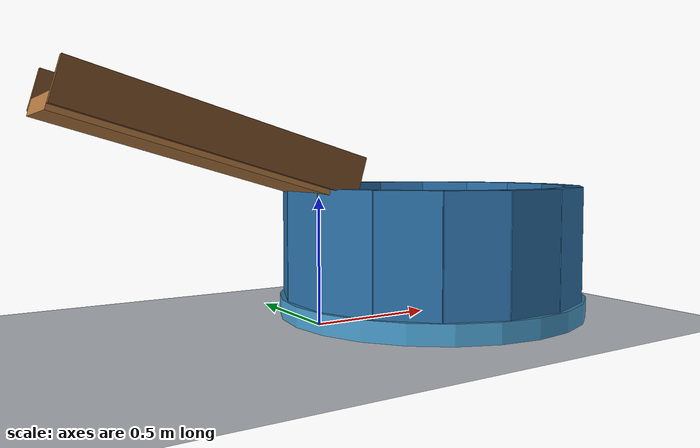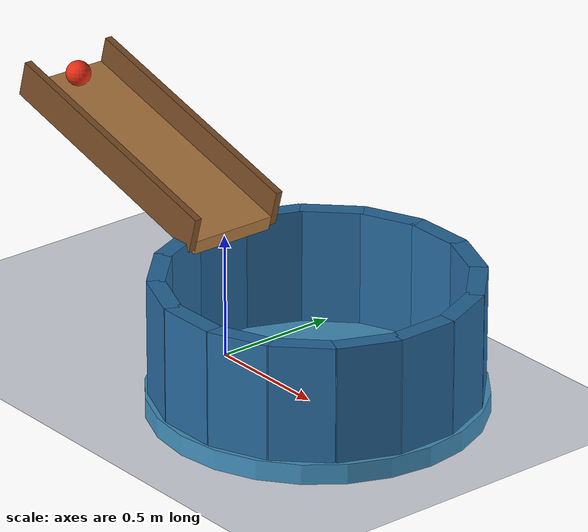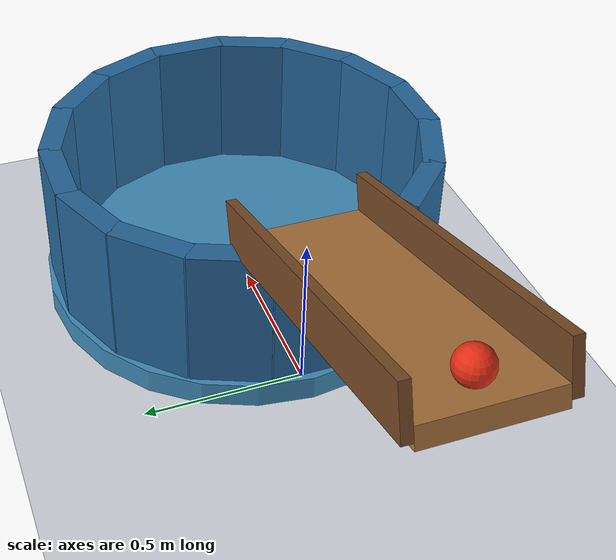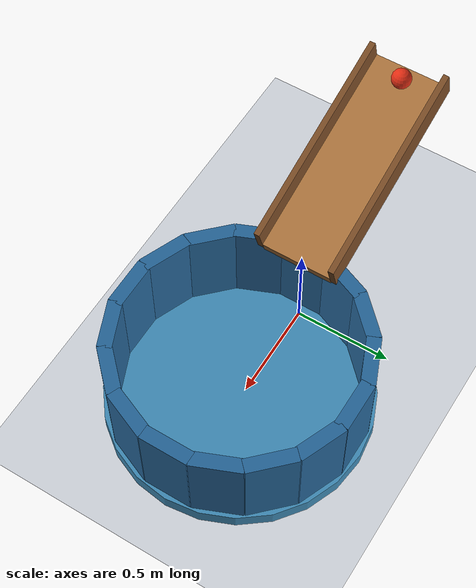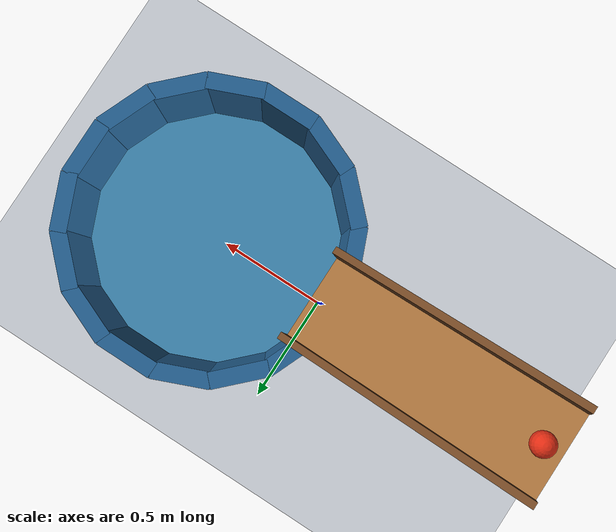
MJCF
<mujoco model="ball_rolls_into_cup">
  <compiler angle="degree"/>
  <option timestep="0.002" gravity="0 0 -9.81" integrator="implicitfast" cone="elliptic" iterations="100"/>
  <size njmax="500" nconmax="200"/>

  <visual>
    <global azimuth="125" elevation="-25"/>
    <headlight ambient="0.35 0.35 0.35" diffuse="0.65 0.65 0.65" specular="0.2 0.2 0.2"/>
  </visual>

  <worldbody>
    <light name="overhead" pos="-0.5 -1.5 3" dir="0.2 0.3 -1" diffuse="0.8 0.8 0.8"/>
    <camera name="overview" pos="0.1 -3.4 2.3" xyaxes="1 0 0 0 0.5 0.866025" fovy="45"/>

    <geom name="floor" type="plane" pos="0 0 0" size="4 4 0.1" rgba="0.83 0.85 0.88 1" friction="0.8 0.01 0.01" condim="6"/>

    <!-- The ramp descends toward +x and ends just inside the cup opening. -->
    <body name="ramp" pos="-0.475 0 0.67" euler="0 15.9454 0">
      <geom name="ramp_surface" type="box" size="0.546008 0.18 0.03" rgba="0.68 0.46 0.24 1" friction="0.8 0.005 0.0005" condim="6" solref="0.01 1" solimp="0.95 0.99 0.001"/>
      <geom name="ramp_rail_left" type="box" pos="0 0.195 0.065" size="0.546008 0.015 0.075" rgba="0.48 0.30 0.15 1" friction="0.8 0.005 0.0005" condim="6" solref="0.01 1" solimp="0.95 0.99 0.001"/>
      <geom name="ramp_rail_right" type="box" pos="0 -0.195 0.065" size="0.546008 0.015 0.075" rgba="0.48 0.30 0.15 1" friction="0.8 0.005 0.0005" condim="6" solref="0.01 1" solimp="0.95 0.99 0.001"/>
    </body>

    <!-- Overlapping wall segments form an open cup with a solid bottom.
         Its larger rolling friction dissipates the ball's remaining motion. -->
    <body name="cup" pos="0.55 0 0">
      <geom name="cup_bottom" type="cylinder" pos="0 0 0.04" size="0.65 0.04" rgba="0.25 0.55 0.72 1" friction="1 0.02 0.035" condim="6" solref="0.01 1" solimp="0.95 0.99 0.001"/>
      <geom name="cup_wall_00" type="box" pos="0.59 0 0.30" euler="0 0 0" size="0.035 0.122 0.24" rgba="0.15 0.40 0.60 1" friction="1 0.02 0.035" condim="6" solref="0.01 1" solimp="0.95 0.99 0.001"/>
      <geom name="cup_wall_01" type="box" pos="0.545489 0.225783 0.30" euler="0 0 22.5" size="0.035 0.122 0.24" rgba="0.15 0.40 0.60 1" friction="1 0.02 0.035" condim="6" solref="0.01 1" solimp="0.95 0.99 0.001"/>
      <geom name="cup_wall_02" type="box" pos="0.417193 0.417193 0.30" euler="0 0 45" size="0.035 0.122 0.24" rgba="0.15 0.40 0.60 1" friction="1 0.02 0.035" condim="6" solref="0.01 1" solimp="0.95 0.99 0.001"/>
      <geom name="cup_wall_03" type="box" pos="0.225783 0.545489 0.30" euler="0 0 67.5" size="0.035 0.122 0.24" rgba="0.15 0.40 0.60 1" friction="1 0.02 0.035" condim="6" solref="0.01 1" solimp="0.95 0.99 0.001"/>
      <geom name="cup_wall_04" type="box" pos="0 0.59 0.30" euler="0 0 90" size="0.035 0.122 0.24" rgba="0.15 0.40 0.60 1" friction="1 0.02 0.035" condim="6" solref="0.01 1" solimp="0.95 0.99 0.001"/>
      <geom name="cup_wall_05" type="box" pos="-0.225783 0.545489 0.30" euler="0 0 112.5" size="0.035 0.122 0.24" rgba="0.15 0.40 0.60 1" friction="1 0.02 0.035" condim="6" solref="0.01 1" solimp="0.95 0.99 0.001"/>
      <geom name="cup_wall_06" type="box" pos="-0.417193 0.417193 0.30" euler="0 0 135" size="0.035 0.122 0.24" rgba="0.15 0.40 0.60 1" friction="1 0.02 0.035" condim="6" solref="0.01 1" solimp="0.95 0.99 0.001"/>
      <geom name="cup_wall_07" type="box" pos="-0.545489 0.225783 0.30" euler="0 0 157.5" size="0.035 0.122 0.24" rgba="0.15 0.40 0.60 1" friction="1 0.02 0.035" condim="6" solref="0.01 1" solimp="0.95 0.99 0.001"/>
      <geom name="cup_wall_08" type="box" pos="-0.59 0 0.30" euler="0 0 180" size="0.035 0.122 0.24" rgba="0.15 0.40 0.60 1" friction="1 0.02 0.035" condim="6" solref="0.01 1" solimp="0.95 0.99 0.001"/>
      <geom name="cup_wall_09" type="box" pos="-0.545489 -0.225783 0.30" euler="0 0 202.5" size="0.035 0.122 0.24" rgba="0.15 0.40 0.60 1" friction="1 0.02 0.035" condim="6" solref="0.01 1" solimp="0.95 0.99 0.001"/>
      <geom name="cup_wall_10" type="box" pos="-0.417193 -0.417193 0.30" euler="0 0 225" size="0.035 0.122 0.24" rgba="0.15 0.40 0.60 1" friction="1 0.02 0.035" condim="6" solref="0.01 1" solimp="0.95 0.99 0.001"/>
      <geom name="cup_wall_11" type="box" pos="-0.225783 -0.545489 0.30" euler="0 0 247.5" size="0.035 0.122 0.24" rgba="0.15 0.40 0.60 1" friction="1 0.02 0.035" condim="6" solref="0.01 1" solimp="0.95 0.99 0.001"/>
      <geom name="cup_wall_12" type="box" pos="0 -0.59 0.30" euler="0 0 270" size="0.035 0.122 0.24" rgba="0.15 0.40 0.60 1" friction="1 0.02 0.035" condim="6" solref="0.01 1" solimp="0.95 0.99 0.001"/>
      <geom name="cup_wall_13" type="box" pos="0.225783 -0.545489 0.30" euler="0 0 292.5" size="0.035 0.122 0.24" rgba="0.15 0.40 0.60 1" friction="1 0.02 0.035" condim="6" solref="0.01 1" solimp="0.95 0.99 0.001"/>
      <geom name="cup_wall_14" type="box" pos="0.417193 -0.417193 0.30" euler="0 0 315" size="0.035 0.122 0.24" rgba="0.15 0.40 0.60 1" friction="1 0.02 0.035" condim="6" solref="0.01 1" solimp="0.95 0.99 0.001"/>
      <geom name="cup_wall_15" type="box" pos="0.545489 -0.225783 0.30" euler="0 0 337.5" size="0.035 0.122 0.24" rgba="0.15 0.40 0.60 1" friction="1 0.02 0.035" condim="6" solref="0.01 1" solimp="0.95 0.99 0.001"/>
    </body>

    <body name="ball" pos="-0.9 0 0.875">
      <freejoint/>
      <geom name="ball" type="sphere" size="0.05" density="500" rgba="0.9 0.18 0.08 1" friction="0.8 0.005 0.0005" condim="6" solref="0.01 1" solimp="0.95 0.99 0.001"/>
    </body>
  </worldbody>

  <keyframe>
    <key name="start" qpos="-0.9 0 0.875 1 0 0 0" qvel="0 0 0 0 0 0"/>
  </keyframe>
</mujoco>
